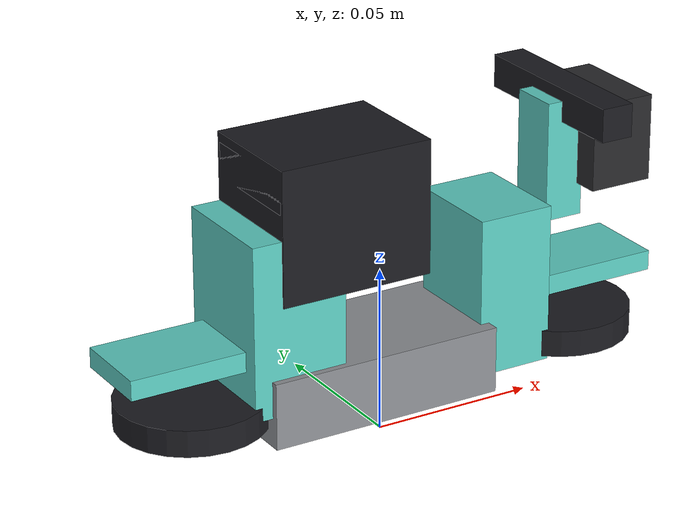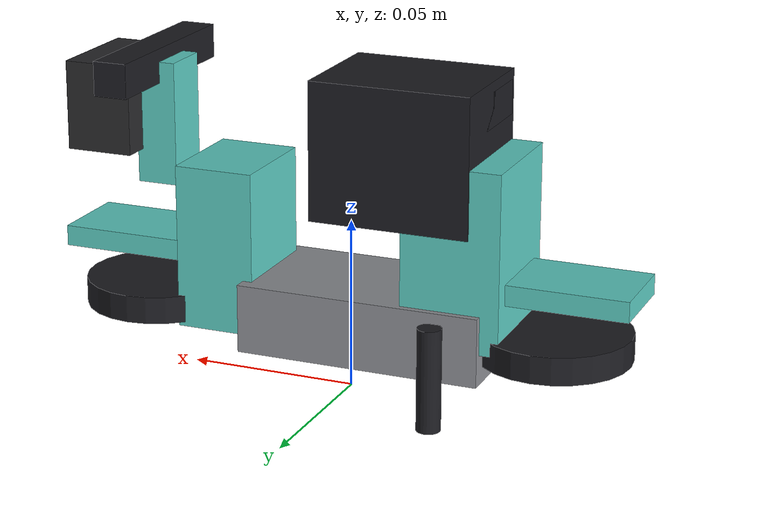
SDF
<?xml version="1.0"?>
<sdf version="1.7">
  <model name="ebike">
    <static>true</static>
    <link name="link">
<visual name="deck"><pose>-0.0090 0.0000 0.0231 0 0 0.0000</pose><geometry><box><size>0.0720 0.0390 0.020</size></box></geometry><material><ambient>0.55 0.56 0.58 1</ambient><diffuse>0.55 0.56 0.58 1</diffuse></material></visual>
      <visual name="body_f"><pose>0.0360 0.0000 0.0408 0 0 0.0000</pose><geometry><box><size>0.0234 0.0310 0.048</size></box></geometry><material><ambient>0.36 0.80 0.76 1</ambient><diffuse>0.36 0.80 0.76 1</diffuse></material></visual>
      <visual name="body_r"><pose>-0.0360 0.0000 0.0480 0 0 0.0000</pose><geometry><box><size>0.0288 0.0350 0.052</size></box></geometry><material><ambient>0.36 0.80 0.76 1</ambient><diffuse>0.36 0.80 0.76 1</diffuse></material></visual>
      <visual name="seatbox"><pose>-0.0180 0.0000 0.0744 0 0 0.0000</pose><geometry><box><size>0.0468 0.0360 0.040</size></box></geometry><material><ambient>0.11 0.11 0.13 1</ambient><diffuse>0.11 0.11 0.13 1</diffuse></material></visual>
      <visual name="seat"><pose>-0.0216 0.0000 0.0864 0 0 0.0000</pose><geometry><box><size>0.0396 0.0340 0.010</size></box></geometry><material><ambient>0.11 0.11 0.13 1</ambient><diffuse>0.11 0.11 0.13 1</diffuse></material></visual>
      <visual name="stem"><pose>0.0576 0.0000 0.0744 0 0 0.0000</pose><geometry><box><size>0.012 0.0150 0.0360</size></box></geometry><material><ambient>0.36 0.80 0.76 1</ambient><diffuse>0.36 0.80 0.76 1</diffuse></material></visual>
      <visual name="bar"><pose>0.0612 0.0000 0.0912 0 0 0.0000</pose><geometry><box><size>0.010 0.0550 0.010</size></box></geometry><material><ambient>0.11 0.11 0.13 1</ambient><diffuse>0.11 0.11 0.13 1</diffuse></material></visual>
      <visual name="basket"><pose>0.0720 0.0000 0.0792 0 0 0.0000</pose><geometry><box><size>0.0198 0.0310 0.026</size></box></geometry><material><ambient>0.16 0.16 0.17 1</ambient><diffuse>0.16 0.16 0.17 1</diffuse></material></visual>
      <visual name="fender_f"><pose>0.0612 0.0000 0.0385 0 0 0.0000</pose><geometry><box><size>0.0484 0.0250 0.006</size></box></geometry><material><ambient>0.36 0.80 0.76 1</ambient><diffuse>0.36 0.80 0.76 1</diffuse></material></visual>
      <visual name="fender_r"><pose>-0.0612 0.0000 0.0385 0 0 0.0000</pose><geometry><box><size>0.0484 0.0250 0.006</size></box></geometry><material><ambient>0.36 0.80 0.76 1</ambient><diffuse>0.36 0.80 0.76 1</diffuse></material></visual>
      <visual name="wheel_f"><pose>0.0612 0.0000 0.0220 0 0 0.0000</pose><geometry><cylinder><radius>0.0220</radius><length>0.0080</length></cylinder></geometry><material><ambient>0.11 0.11 0.13 1</ambient><diffuse>0.11 0.11 0.13 1</diffuse></material></visual>
      <collision name="wheel_f_c_c"><pose>0.0612 0.0000 0.0220 0 0 0.0000</pose><geometry><cylinder><radius>0.0220</radius><length>0.0080</length></cylinder></geometry></collision>
      <visual name="wheel_r"><pose>-0.0612 0.0000 0.0220 0 0 0.0000</pose><geometry><cylinder><radius>0.0220</radius><length>0.0080</length></cylinder></geometry><material><ambient>0.11 0.11 0.13 1</ambient><diffuse>0.11 0.11 0.13 1</diffuse></material></visual>
      <collision name="wheel_r_c_c"><pose>-0.0612 0.0000 0.0220 0 0 0.0000</pose><geometry><cylinder><radius>0.0220</radius><length>0.0080</length></cylinder></geometry></collision>
      <visual name="kick"><pose>-0.0324 0.0225 0.0150 0 0 0.0000</pose><geometry><cylinder><radius>0.0035</radius><length>0.0300</length></cylinder></geometry><material><ambient>0.11 0.11 0.13 1</ambient><diffuse>0.11 0.11 0.13 1</diffuse></material></visual>
    </link>
  </model>
</sdf>
